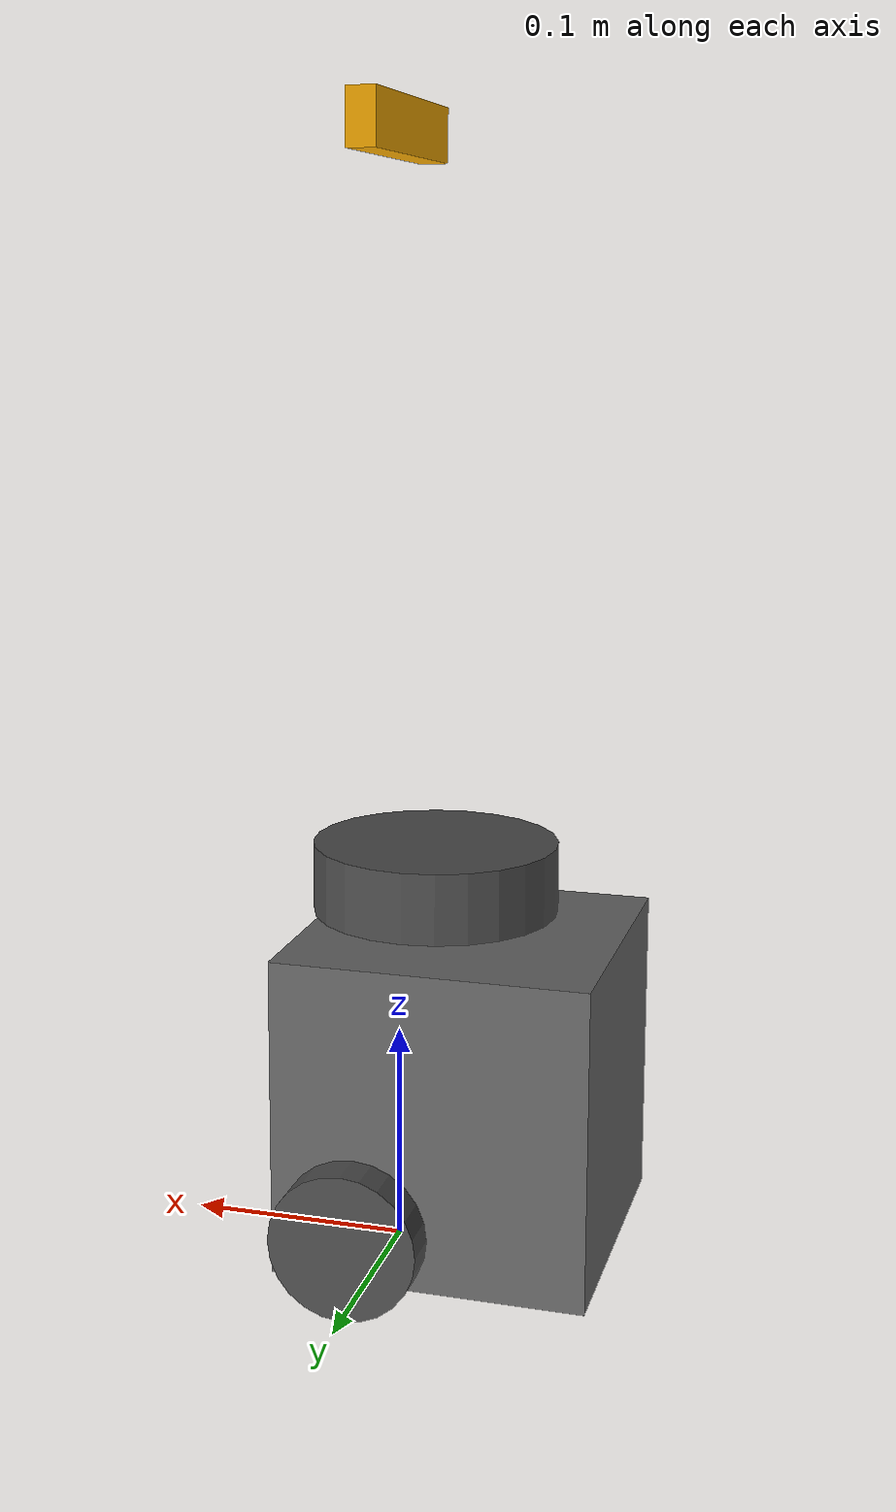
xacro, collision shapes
<?xml version="1.0"?>
<robot name="test_model" xmlns:xacro="http://www.ros.org/wiki/xacro">

    <!-- Turtlebot3 base -->
    <xacro:include filename="$(find turtlebot3_description)/urdf/turtlebot3_burger.urdf"/>

    <!-- Turtlebot3 SDF elements -->
    <gazebo reference="imu_link">
        <sensor name="tb3_imu" type="imu">
        <always_on>true</always_on>
        <update_rate>200</update_rate>
        <imu>
          <angular_velocity>
            <x>
              <noise type="gaussian">
                <mean>0.0</mean>
                <stddev>2e-4</stddev>
              </noise>
            </x>
            <y>
              <noise type="gaussian">
                <mean>0.0</mean>
                <stddev>2e-4</stddev>
              </noise>
            </y>
            <z>
              <noise type="gaussian">
                <mean>0.0</mean>
                <stddev>2e-4</stddev>
              </noise>
            </z>
          </angular_velocity>
          <linear_acceleration>
            <x>
              <noise type="gaussian">
                <mean>0.0</mean>
                <stddev>1.7e-2</stddev>
              </noise>
            </x>
            <y>
              <noise type="gaussian">
                <mean>0.0</mean>
                <stddev>1.7e-2</stddev>
              </noise>
            </y>
            <z>
              <noise type="gaussian">
                <mean>0.0</mean>
                <stddev>1.7e-2</stddev>
              </noise>
            </z>
          </linear_acceleration>
        </imu>
        <plugin name="turtlebot3_imu" filename="libgazebo_ros_imu_sensor.so">
          <ros>
            <remapping>~/out:=imu</remapping>
          </ros>
        </plugin>
      </sensor>
    </gazebo>

    <gazebo reference="base_scan">
        <sensor name="hls_lfcd_lds" type="ray">
        <always_on>true</always_on>
        <visualize>true</visualize>
        <pose>-0.032 0 0.171 0 0 0</pose>
        <update_rate>5</update_rate>
        <ray>
          <scan>
            <horizontal>
              <samples>360</samples>
              <resolution>1.000000</resolution>
              <min_angle>0.000000</min_angle>
              <max_angle>6.280000</max_angle>
            </horizontal>
          </scan>
          <range>
            <min>0.120000</min>
            <max>3.5</max>
            <resolution>0.015000</resolution>
          </range>
          <noise>
            <type>gaussian</type>
            <mean>0.0</mean>
            <stddev>0.01</stddev>
          </noise>
        </ray>
        <plugin name="turtlebot3_laserscan" filename="libgazebo_ros_ray_sensor.so">
          <ros>
            <remapping>~/out:=scan</remapping>
          </ros>
          <output_type>sensor_msgs/LaserScan</output_type>
          <frame_name>base_scan</frame_name>
        </plugin>
      </sensor>
    </gazebo>

    <gazebo reference="wheel_left_link">
        <collision name="wheel_left_collision">
        <pose>0 0.08 0.023 -1.57 0 0</pose>
        <geometry>
          <cylinder>
            <radius>0.033</radius>
            <length>0.018</length>
          </cylinder>
        </geometry>
        <surface>
          <!-- This friction pamareter don't contain reliable data!! -->
          <friction>
            <ode>
              <mu>100000.0</mu>
              <mu2>100000.0</mu2>
              <fdir1>0 0 0</fdir1>
              <slip1>0.0</slip1>
              <slip2>0.0</slip2>
            </ode>
          </friction>
          <contact>
            <ode>
              <soft_cfm>0</soft_cfm>
              <soft_erp>0.2</soft_erp>
              <kp>1e+5</kp>
              <kd>1</kd>
              <max_vel>0.01</max_vel>
              <min_depth>0.001</min_depth>
            </ode>
          </contact>
        </surface>
      </collision>
    </gazebo>

    <gazebo reference="wheel_right_link">
        <collision name="wheel_right_collision">
        <pose>0.0 -0.08 0.023 -1.57 0 0</pose>
        <geometry>
          <cylinder>
            <radius>0.033</radius>
            <length>0.018</length>
          </cylinder>
        </geometry>
        <surface>
          <!-- This friction pamareter don't contain reliable data!! -->
          <friction>
            <ode>
              <mu>100000.0</mu>
              <mu2>100000.0</mu2>
              <fdir1>0 0 0</fdir1>
              <slip1>0.0</slip1>
              <slip2>0.0</slip2>
            </ode>
          </friction>
          <contact>
            <ode>
              <soft_cfm>0</soft_cfm>
              <soft_erp>0.2</soft_erp>
              <kp>1e+5</kp>
              <kd>1</kd>
              <max_vel>0.01</max_vel>
              <min_depth>0.001</min_depth>
            </ode>
          </contact>
        </surface>
      </collision>
    </gazebo>

    <gazebo reference="caster_back_link">
        <collision name='collision'>
        <geometry>
          <sphere>
            <radius>0.005000</radius>
          </sphere>
        </geometry>
        <surface>
          <contact>
            <ode>
              <soft_cfm>0</soft_cfm>
              <soft_erp>0.2</soft_erp>
              <kp>1e+5</kp>
              <kd>1</kd>
              <max_vel>0.01</max_vel>
              <min_depth>0.001</min_depth>
            </ode>
          </contact>
        </surface>
      </collision>
    </gazebo>

    <gazebo>
        <plugin name="turtlebot3_diff_drive" filename="libgazebo_ros_diff_drive.so">

        <ros>
        </ros>

        <update_rate>30</update_rate>

        <!-- wheels -->
        <left_joint>wheel_left_joint</left_joint>
        <right_joint>wheel_right_joint</right_joint>

        <!-- kinematics -->
        <wheel_separation>0.160</wheel_separation>
        <wheel_diameter>0.066</wheel_diameter>

        <!-- limits -->
        <max_wheel_torque>20</max_wheel_torque>
        <max_wheel_acceleration>1.0</max_wheel_acceleration>

        <command_topic>cmd_vel</command_topic>

        <!-- output -->
        <publish_odom>true</publish_odom>
        <publish_odom_tf>true</publish_odom_tf>
        <publish_wheel_tf>false</publish_wheel_tf>

        <odometry_topic>odom</odometry_topic>
        <odometry_frame>odom</odometry_frame>
        <robot_base_frame>base_footprint</robot_base_frame>

        </plugin>

        <plugin name="turtlebot3_joint_state" filename="libgazebo_ros_joint_state_publisher.so">
        <ros>
            <remapping>~/out:=joint_states</remapping>
        </ros>
        <update_rate>30</update_rate>
        <joint_name>wheel_left_joint</joint_name>
        <joint_name>wheel_right_joint</joint_name>
        </plugin>
    </gazebo>

    <!-- Realsense T265 -->
    <xacro:include filename="$(find realsense_ros_gazebo)/xacro/tracker.xacro"/>

    <xacro:realsense_T265 sensor_name="camera" parent_link="base_link" rate="30.0">
        <origin rpy="0 0 0" xyz="0 0 0.490"/>
    </xacro:realsense_T265>
</robot>

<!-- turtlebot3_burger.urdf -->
<!-- |    This document was autogenerated by xacro from /tmp/claude-0/-home-claude/8f5dd28e-fe63-5f45-8f7e-d1a0395364a9/scratchpad/repos/tb3/turtlebot3_description/urdf/turtlebot3_burger.urdf | -->
<!-- |    EDITING THIS FILE BY HAND IS NOT RECOMMENDED                                 | -->
<robot name="turtlebot3_burger">
  <!-- Init colour -->
  <material name="black">
    <color rgba="0.0 0.0 0.0 1.0"/>
  </material>
  <material name="dark">
    <color rgba="0.3 0.3 0.3 1.0"/>
  </material>
  <material name="light_black">
    <color rgba="0.4 0.4 0.4 1.0"/>
  </material>
  <material name="blue">
    <color rgba="0.0 0.0 0.8 1.0"/>
  </material>
  <material name="green">
    <color rgba="0.0 0.8 0.0 1.0"/>
  </material>
  <material name="grey">
    <color rgba="0.5 0.5 0.5 1.0"/>
  </material>
  <material name="orange">
    <color rgba="1.0 0.4235 0.0392 1.0"/>
  </material>
  <material name="brown">
    <color rgba="0.8706 0.8118 0.7647 1.0"/>
  </material>
  <material name="red">
    <color rgba="0.8 0.0 0.0 1.0"/>
  </material>
  <material name="white">
    <color rgba="1.0 1.0 1.0 1.0"/>
  </material>
  <link name="base_footprint"/>
  <joint name="base_joint" type="fixed">
    <parent link="base_footprint"/>
    <child link="base_link"/>
    <origin rpy="0 0 0" xyz="0.0 0.0 0.010"/>
  </joint>
  <link name="base_link">
    <visual>
      <origin rpy="0 0 0" xyz="-0.032 0 0.0"/>
      <geometry>
        <mesh filename="package://turtlebot3_description/meshes/bases/burger_base.stl" scale="0.001 0.001 0.001"/>
      </geometry>
      <material name="light_black"/>
    </visual>
    <collision>
      <origin rpy="0 0 0" xyz="-0.032 0 0.070"/>
      <geometry>
        <box size="0.140 0.140 0.143"/>
      </geometry>
    </collision>
    <inertial>
      <origin rpy="0 0 0" xyz="0 0 0"/>
      <mass value="8.2573504e-01"/>
      <inertia ixx="2.2124416e-03" ixy="-1.2294101e-05" ixz="3.4938785e-05" iyy="2.1193702e-03" iyz="-5.0120904e-06" izz="2.0064271e-03"/>
    </inertial>
  </link>
  <joint name="wheel_left_joint" type="continuous">
    <parent link="base_link"/>
    <child link="wheel_left_link"/>
    <origin rpy="-1.57 0 0" xyz="0.0 0.08 0.023"/>
    <axis xyz="0 0 1"/>
  </joint>
  <link name="wheel_left_link">
    <visual>
      <origin rpy="1.57 0 0" xyz="0 0 0"/>
      <geometry>
        <mesh filename="package://turtlebot3_description/meshes/wheels/left_tire.stl" scale="0.001 0.001 0.001"/>
      </geometry>
      <material name="dark"/>
    </visual>
    <collision>
      <origin rpy="0 0 0" xyz="0 0 0"/>
      <geometry>
        <cylinder length="0.018" radius="0.033"/>
      </geometry>
    </collision>
    <inertial>
      <origin xyz="0 0 0"/>
      <mass value="2.8498940e-02"/>
      <inertia ixx="1.1175580e-05" ixy="-4.2369783e-11" ixz="-5.9381719e-09" iyy="1.1192413e-05" iyz="-1.4400107e-11" izz="2.0712558e-05"/>
    </inertial>
  </link>
  <joint name="wheel_right_joint" type="continuous">
    <parent link="base_link"/>
    <child link="wheel_right_link"/>
    <origin rpy="-1.57 0 0" xyz="0.0 -0.080 0.023"/>
    <axis xyz="0 0 1"/>
  </joint>
  <link name="wheel_right_link">
    <visual>
      <origin rpy="1.57 0 0" xyz="0 0 0"/>
      <geometry>
        <mesh filename="package://turtlebot3_description/meshes/wheels/right_tire.stl" scale="0.001 0.001 0.001"/>
      </geometry>
      <material name="dark"/>
    </visual>
    <collision>
      <origin rpy="0 0 0" xyz="0 0 0"/>
      <geometry>
        <cylinder length="0.018" radius="0.033"/>
      </geometry>
    </collision>
    <inertial>
      <origin xyz="0 0 0"/>
      <mass value="2.8498940e-02"/>
      <inertia ixx="1.1175580e-05" ixy="-4.2369783e-11" ixz="-5.9381719e-09" iyy="1.1192413e-05" iyz="-1.4400107e-11" izz="2.0712558e-05"/>
    </inertial>
  </link>
  <joint name="caster_back_joint" type="fixed">
    <parent link="base_link"/>
    <child link="caster_back_link"/>
    <origin rpy="-1.57 0 0" xyz="-0.081 0 -0.004"/>
  </joint>
  <link name="caster_back_link">
    <collision>
      <origin rpy="0 0 0" xyz="0 0.001 0"/>
      <geometry>
        <box size="0.030 0.009 0.020"/>
      </geometry>
    </collision>
    <inertial>
      <origin xyz="0 0 0"/>
      <mass value="0.005"/>
      <inertia ixx="0.001" ixy="0.0" ixz="0.0" iyy="0.001" iyz="0.0" izz="0.001"/>
    </inertial>
  </link>
  <joint name="imu_joint" type="fixed">
    <parent link="base_link"/>
    <child link="imu_link"/>
    <origin rpy="0 0 0" xyz="-0.032 0 0.068"/>
  </joint>
  <link name="imu_link"/>
  <joint name="scan_joint" type="fixed">
    <parent link="base_link"/>
    <child link="base_scan"/>
    <origin rpy="0 0 0" xyz="-0.032 0 0.172"/>
  </joint>
  <link name="base_scan">
    <visual>
      <origin rpy="0 0 0" xyz="0 0 0.0"/>
      <geometry>
        <mesh filename="package://turtlebot3_description/meshes/sensors/lds.stl" scale="0.001 0.001 0.001"/>
      </geometry>
      <material name="dark"/>
    </visual>
    <collision>
      <origin rpy="0 0 0" xyz="0.015 0 -0.0065"/>
      <geometry>
        <cylinder length="0.0315" radius="0.055"/>
      </geometry>
    </collision>
    <inertial>
      <mass value="0.114"/>
      <origin xyz="0 0 0"/>
      <inertia ixx="0.001" ixy="0.0" ixz="0.0" iyy="0.001" iyz="0.0" izz="0.001"/>
    </inertial>
  </link>
</robot>

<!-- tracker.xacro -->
<robot xmlns:xacro="http://www.ros.org/wiki/xacro">

  <xacro:macro name="T265_fisheye" params="sensor_name reference_frame topic rate">
    <gazebo reference="${reference_frame}">
      <sensor name="camera" type="wideanglecamera">
        <camera>
          <horizontal_fov>6.283</horizontal_fov>
          <image>
            <width>320</width>
            <height>240</height>
          </image>
          <clip>
            <near>0.1</near>
            <far>100</far>
          </clip>
          <lens>
            <type>custom</type>
            <custom_function>
              <c1>1.05</c1>
              <c2>4</c2>
              <f>1.0</f>
              <fun>tan</fun>
            </custom_function>
            <scale_to_hfov>true</scale_to_hfov>
            <cutoff_angle>6.283</cutoff_angle>
            <env_texture_size>512</env_texture_size>
          </lens>
          <always_on>true</always_on>
          <update_rate>30</update_rate>
        </camera>
        <plugin name="camera_controller" filename="libgazebo_ros_camera.so">
          <cameraName>${sensor_name}/${topic}</cameraName>
          <imageTopicName>image_raw</imageTopicName>
          <cameraInfoTopicName>camera_info</cameraInfoTopicName>
          <frameName>${reference_frame}</frameName>
          <hackBaseline>0.07</hackBaseline>
          <distortionK1>-0.007419134024530649</distortionK1>
          <distortionK2>0.041209351271390915</distortionK2>
          <distortionK3>-0.03811917081475258</distortionK3>
          <distortionT1>0.006366158835589886</distortionT1>
          <distortionT2>0.0</distortionT2>
          <CxPrime>416.00531005859375</CxPrime>
          <Cx>16.00531005859375</Cx>
          <Cy>403.38909912109375</Cy>
        </plugin>
      </sensor>
    </gazebo>
  </xacro:macro>

  <!-- INTEL REALSENSE T265 -->

  <xacro:macro name="realsense_T265" params="sensor_name parent_link rate *origin">

    <joint name="${sensor_name}_odom_frame_joint" type="fixed">
        <parent link="${parent_link}"/>
        <child link="${sensor_name}_odom_frame"/>
        <xacro:insert_block name="origin"/>
    </joint>

    <joint name="${sensor_name}_pose_frame_joint" type="fixed">
        <parent link="${sensor_name}_odom_frame"/>
        <child link="${sensor_name}_pose_frame"/>
        <origin rpy="0 0 0" xyz="0 0 0"/> <!-- check on real hw -->
    </joint>
    <link name="${sensor_name}_odom_frame" />

    <link name="${sensor_name}_pose_frame">
        <visual>
            <origin rpy="1.57 0 1.57" xyz="0 0 -0.478"/>
            <geometry>
                <mesh filename="package://realsense_ros_gazebo/meshes/realsense_t265.stl" scale="0.001 0.001 0.001"/>
            </geometry>
        </visual>
        <collision>
            <geometry>
                <box size="0.013 0.108 0.024"/>
            </geometry>
        </collision>
        <inertial>
            <mass value="0.055"/>
            <origin rpy="0 0 0" xyz="0 0 0"/>
            <inertia ixx="9.108e-05"
                     ixy="0"
                     ixz="0"
                     iyy="2.51e-06"
                     iyz="0"
                     izz="8.931e-05"/>
        </inertial>
    </link>

    <joint name="${sensor_name}_joint" type="fixed">
        <parent link="${sensor_name}_pose_frame"/>
        <child link="${sensor_name}_link"/>
        <origin rpy="0 0 0" xyz="0 0 0"/> <!-- check on real hw -->
    </joint>
    <link name="${sensor_name}_link"/>

    <joint name="${sensor_name}_fisheye1_joint" type="fixed">
        <parent link="${sensor_name}_link"/>
        <child link="${sensor_name}_fisheye1_frame"/>
        <origin rpy="0 0 0" xyz="0 0.042 0"/>
    </joint>
    <link name="${sensor_name}_fisheye1_frame"/>

    <joint name="${sensor_name}_fisheye1_optical_joint" type="fixed">
        <parent link="${sensor_name}_fisheye1_frame"/>
        <child link="${sensor_name}_fisheye1_optical_frame"/>
        <origin rpy="0 0 0" xyz="0.01 0 0"/>
    </joint>
    <link name="${sensor_name}_fisheye1_optical_frame"/>
    <xacro:T265_fisheye
      sensor_name="${sensor_name}"
      reference_frame="${sensor_name}_fisheye1_optical_frame"
      topic="fisheye1"
      rate="${rate}">
    </xacro:T265_fisheye>

    <joint name="${sensor_name}_fisheye2_joint" type="fixed">
        <parent link="${sensor_name}_link"/>
        <child link="${sensor_name}_fisheye2_frame"/>
        <origin rpy="0 0 0" xyz="0 -0.022 0"/>
    </joint>
    <link name="${sensor_name}_fisheye2_frame"/>

    <joint name="${sensor_name}_fisheye2_optical_joint" type="fixed">
        <parent link="${sensor_name}_fisheye2_frame"/>
        <child link="${sensor_name}_fisheye2_optical_frame"/>
        <origin rpy="0 0 0" xyz="0.01 0 0"/>
    </joint>
    <link name="${sensor_name}_fisheye2_optical_frame"/>
    <xacro:T265_fisheye
      sensor_name="${sensor_name}"
      reference_frame="${sensor_name}_fisheye2_optical_frame"
      topic="fisheye2"
      rate="${rate}">
    </xacro:T265_fisheye>

    <joint name="${sensor_name}_gyro_joint" type="fixed">
        <parent link="${sensor_name}_link"/>
        <child link="${sensor_name}_gyro_frame"/>
        <origin rpy="0 0 0" xyz="0 0 0"/> <!-- check on real hw -->
    </joint>
    <link name="${sensor_name}_gyro_frame"/>

    <gazebo reference="${sensor_name}_gyro_frame">
        <gravity>true</gravity>
        <sensor name="${sensor_name}_imu" type="imu">
            <always_on>true</always_on>
            <update_rate>${rate}</update_rate>
            <visualize>false</visualize>
            <plugin filename="libgazebo_ros_imu_sensor.so" name="imu_plugin">
                <topicName>${sensor_name}/gyro/sample</topicName>
                <bodyName>${sensor_name}_pose_frame</bodyName>
                <updateRateHZ>${rate}</updateRateHZ>
                <gaussianNoise>0.000001</gaussianNoise>
                <xyzOffset>0 0 0</xyzOffset>
                <rpyOffset>0 0 0</rpyOffset>
                <frameName>${sensor_name}_link</frameName>
            </plugin>
        </sensor>
    </gazebo>

    <joint name="${sensor_name}_accel_joint" type="fixed">
        <parent link="${sensor_name}_link"/>
        <child link="${sensor_name}_accel_frame"/>
        <origin rpy="0 0 0" xyz="0 0 0"/> <!-- check on real hw -->
    </joint>
    <link name="${sensor_name}_accel_frame"/> <!-- dummy -->

    <gazebo> <!-- odometry -->
        <plugin name="p3d_base_controller" filename="libgazebo_ros_p3d.so">
            <alwaysOn>true</alwaysOn>
            <updateRate>${rate}</updateRate>
            <bodyName>${sensor_name}_odom_frame</bodyName>
            <topicName>${sensor_name}/odom/sample</topicName>
            <gaussianNoise>0.001</gaussianNoise>
            <frameName>map</frameName>
            <xyzOffsets>0 0 0</xyzOffsets>
            <rpyOffsets>0 0 0</rpyOffsets>
        </plugin>
    </gazebo>

  </xacro:macro>

</robot>
